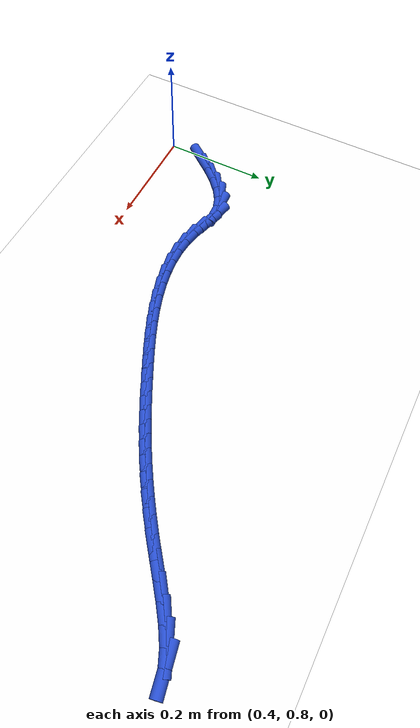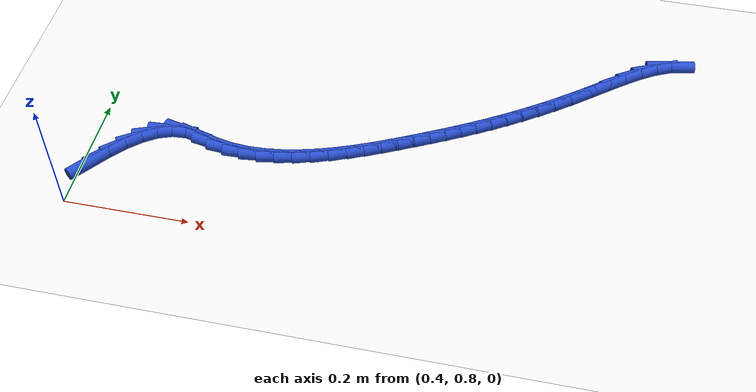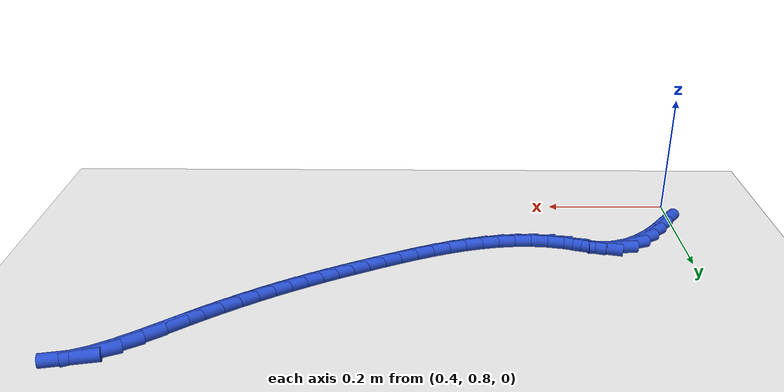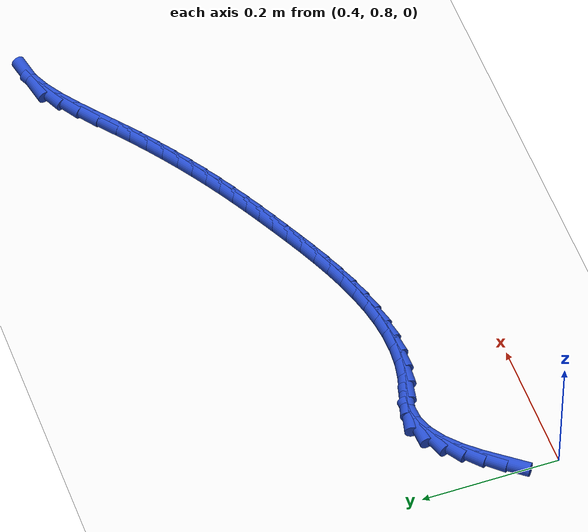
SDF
<sdf version="1.6">
 <world name="default">
  <model name="ground_plane">
   <static>1</static>
   <link name="link">
    <collision name="collision">
     <geometry><plane><normal>0 0 1</normal><size>100 100</size></plane></geometry>
     <surface><friction><ode><mu>100</mu><mu2>50</mu2></ode></friction></surface>
    </collision>
    <visual name="visual">
     <cast_shadows>0</cast_shadows>
     <geometry><plane><normal>0 0 1</normal><size>100 100</size></plane></geometry>
     <material>
      <script><uri>file://media/materials/scripts/gazebo.material</uri><name>Gazebo/WhiteGlow</name></script>
     </material>
    </visual>
   </link>
  </model>
  <model name="line">
   <link name="link_36">
    <pose>0.41557715671589757 0.8766518888122864 0.01 0 1.57 0.9097168254434055</pose>
    <collision name="collision">
     <geometry><cylinder><radius>0.01</radius><length>0.08</length></cylinder></geometry>
    </collision>
    <visual name="visual">
     <material>
      <script><name>Gazebo/Blue</name><uri>file://media/materials/scripts/gazebo.material</uri></script>
     </material>
     <geometry><cylinder><radius>0.01</radius><length>0.08</length></cylinder></geometry>
    </visual>
   </link>
   <link name="link_37">
    <pose>0.43493534386232124 0.9015391206780022 0.01 0 1.57 0.8382022605168087</pose>
    <collision name="collision">
     <geometry><cylinder><radius>0.01</radius><length>0.08</length></cylinder></geometry>
    </collision>
    <visual name="visual">
     <material>
      <script><name>Gazebo/Blue</name><uri>file://media/materials/scripts/gazebo.material</uri></script>
     </material>
     <geometry><cylinder><radius>0.01</radius><length>0.08</length></cylinder></geometry>
    </visual>
   </link>
   <link name="link_38">
    <pose>0.45508494013292605 0.9239375156891247 0.01 0 1.57 0.7292741217284323</pose>
    <collision name="collision">
     <geometry><cylinder><radius>0.01</radius><length>0.08</length></cylinder></geometry>
    </collision>
    <visual name="visual">
     <material>
      <script><name>Gazebo/Blue</name><uri>file://media/materials/scripts/gazebo.material</uri></script>
     </material>
     <geometry><cylinder><radius>0.01</radius><length>0.08</length></cylinder></geometry>
    </visual>
   </link>
   <link name="link_39">
    <pose>0.47612339207552895 0.9427377111314772 0.01 0 1.57 0.5692098055685585</pose>
    <collision name="collision">
     <geometry><cylinder><radius>0.01</radius><length>0.08</length></cylinder></geometry>
    </collision>
    <visual name="visual">
     <material>
      <script><name>Gazebo/Blue</name><uri>file://media/materials/scripts/gazebo.material</uri></script>
     </material>
     <geometry><cylinder><radius>0.01</radius><length>0.08</length></cylinder></geometry>
    </visual>
   </link>
   <link name="link_40">
    <pose>0.49814814623794745 0.9568303442908832 0.01 0 1.57 0.34389377227890133</pose>
    <collision name="collision">
     <geometry><cylinder><radius>0.01</radius><length>0.08</length></cylinder></geometry>
    </collision>
    <visual name="visual">
     <material>
      <script><name>Gazebo/Blue</name><uri>file://media/materials/scripts/gazebo.material</uri></script>
     </material>
     <geometry><cylinder><radius>0.01</radius><length>0.08</length></cylinder></geometry>
    </visual>
   </link>
   <link name="link_41">
    <pose>0.5212566491679989 0.9651060524531663 0.01 0 1.57 0.05549820853235824</pose>
    <collision name="collision">
     <geometry><cylinder><radius>0.01</radius><length>0.08</length></cylinder></geometry>
    </collision>
    <visual name="visual">
     <material>
      <script><name>Gazebo/Blue</name><uri>file://media/materials/scripts/gazebo.material</uri></script>
     </material>
     <geometry><cylinder><radius>0.01</radius><length>0.08</length></cylinder></geometry>
    </visual>
   </link>
   <link name="link_42">
    <pose>0.5455463474135003 0.96645547290415 0.01 0 1.57 -0.2350668429261476</pose>
    <collision name="collision">
     <geometry><cylinder><radius>0.01</radius><length>0.08</length></cylinder></geometry>
    </collision>
    <visual name="visual">
     <material>
      <script><name>Gazebo/Blue</name><uri>file://media/materials/scripts/gazebo.material</uri></script>
     </material>
     <geometry><cylinder><radius>0.01</radius><length>0.08</length></cylinder></geometry>
    </visual>
   </link>
   <link name="link_43">
    <pose>0.5710711136635586 0.9603424348504531 0.01 0 1.57 -0.30181040248448376</pose>
    <collision name="collision">
     <geometry><cylinder><radius>0.01</radius><length>0.08</length></cylinder></geometry>
    </collision>
    <visual name="visual">
     <material>
      <script><name>Gazebo/Blue</name><uri>file://media/materials/scripts/gazebo.material</uri></script>
     </material>
     <geometry><cylinder><radius>0.01</radius><length>0.08</length></cylinder></geometry>
    </visual>
   </link>
   <link name="link_44">
    <pose>0.5974346698493049 0.9521349061430052 0.01 0 1.57 -0.19079171505916978</pose>
    <collision name="collision">
     <geometry><cylinder><radius>0.01</radius><length>0.08</length></cylinder></geometry>
    </collision>
    <visual name="visual">
     <material>
      <script><name>Gazebo/Blue</name><uri>file://media/materials/scripts/gazebo.material</uri></script>
     </material>
     <geometry><cylinder><radius>0.01</radius><length>0.08</length></cylinder></geometry>
    </visual>
   </link>
   <link name="link_45">
    <pose>0.6242030603973368 0.9469648334704381 0.01 0 1.57 -0.07663513551249</pose>
    <collision name="collision">
     <geometry><cylinder><radius>0.01</radius><length>0.08</length></cylinder></geometry>
    </collision>
    <visual name="visual">
     <material>
      <script><name>Gazebo/Blue</name><uri>file://media/materials/scripts/gazebo.material</uri></script>
     </material>
     <geometry><cylinder><radius>0.01</radius><length>0.08</length></cylinder></geometry>
    </visual>
   </link>
   <link name="link_46">
    <pose>0.6512533928669875 0.9448877598039425 0.01 0 1.57 0.026088019033160104</pose>
    <collision name="collision">
     <geometry><cylinder><radius>0.01</radius><length>0.08</length></cylinder></geometry>
    </collision>
    <visual name="visual">
     <material>
      <script><name>Gazebo/Blue</name><uri>file://media/materials/scripts/gazebo.material</uri></script>
     </material>
     <geometry><cylinder><radius>0.01</radius><length>0.08</length></cylinder></geometry>
    </visual>
   </link>
   <link name="link_47">
    <pose>0.6784849381984444 0.9455983380870778 0.01 0 1.57 0.11637568455757877</pose>
    <collision name="collision">
     <geometry><cylinder><radius>0.01</radius><length>0.08</length></cylinder></geometry>
    </collision>
    <visual name="visual">
     <material>
      <script><name>Gazebo/Blue</name><uri>file://media/materials/scripts/gazebo.material</uri></script>
     </material>
     <geometry><cylinder><radius>0.01</radius><length>0.08</length></cylinder></geometry>
    </visual>
   </link>
   <link name="link_48">
    <pose>0.7057969673318943 0.9487912212634037 0.01 0 1.57 0.1942750547246561</pose>
    <collision name="collision">
     <geometry><cylinder><radius>0.01</radius><length>0.08</length></cylinder></geometry>
    </collision>
    <visual name="visual">
     <material>
      <script><name>Gazebo/Blue</name><uri>file://media/materials/scripts/gazebo.material</uri></script>
     </material>
     <geometry><cylinder><radius>0.01</radius><length>0.08</length></cylinder></geometry>
    </visual>
   </link>
   <link name="link_49">
    <pose>0.7330887512075247 0.9541610622764796 0.01 0 1.57 0.2604615958813891</pose>
    <collision name="collision">
     <geometry><cylinder><radius>0.01</radius><length>0.08</length></cylinder></geometry>
    </collision>
    <visual name="visual">
     <material>
      <script><name>Gazebo/Blue</name><uri>file://media/materials/scripts/gazebo.material</uri></script>
     </material>
     <geometry><cylinder><radius>0.01</radius><length>0.08</length></cylinder></geometry>
    </visual>
   </link>
   <link name="link_50">
    <pose>0.7602595607655221 0.9614025140698645 0.01 0 1.57 0.31588413985902697</pose>
    <collision name="collision">
     <geometry><cylinder><radius>0.01</radius><length>0.08</length></cylinder></geometry>
    </collision>
    <visual name="visual">
     <material>
      <script><name>Gazebo/Blue</name><uri>file://media/materials/scripts/gazebo.material</uri></script>
     </material>
     <geometry><cylinder><radius>0.01</radius><length>0.08</length></cylinder></geometry>
    </visual>
   </link>
   <link name="link_51">
    <pose>0.7872086669460738 0.9702102295871187 0.01 0 1.57 0.3615214166022605</pose>
    <collision name="collision">
     <geometry><cylinder><radius>0.01</radius><length>0.08</length></cylinder></geometry>
    </collision>
    <visual name="visual">
     <material>
      <script><name>Gazebo/Blue</name><uri>file://media/materials/scripts/gazebo.material</uri></script>
     </material>
     <geometry><cylinder><radius>0.01</radius><length>0.08</length></cylinder></geometry>
    </visual>
   </link>
   <link name="link_52">
    <pose>0.8138353406893672 0.9802788617718015 0.01 0 1.57 0.398235335562047</pose>
    <collision name="collision">
     <geometry><cylinder><radius>0.01</radius><length>0.08</length></cylinder></geometry>
    </collision>
    <visual name="visual">
     <material>
      <script><name>Gazebo/Blue</name><uri>file://media/materials/scripts/gazebo.material</uri></script>
     </material>
     <geometry><cylinder><radius>0.01</radius><length>0.08</length></cylinder></geometry>
    </visual>
   </link>
   <link name="link_53">
    <pose>0.8400388529355893 0.9913030635674722 0.01 0 1.57 0.4266878115329776</pose>
    <collision name="collision">
     <geometry><cylinder><radius>0.01</radius><length>0.08</length></cylinder></geometry>
    </collision>
    <visual name="visual">
     <material>
      <script><name>Gazebo/Blue</name><uri>file://media/materials/scripts/gazebo.material</uri></script>
     </material>
     <geometry><cylinder><radius>0.01</radius><length>0.08</length></cylinder></geometry>
    </visual>
   </link>
   <link name="link_54">
    <pose>0.8657184746249265 1.0029774879176905 0.01 0 1.57 0.4472895999580837</pose>
    <collision name="collision">
     <geometry><cylinder><radius>0.01</radius><length>0.08</length></cylinder></geometry>
    </collision>
    <visual name="visual">
     <material>
      <script><name>Gazebo/Blue</name><uri>file://media/materials/scripts/gazebo.material</uri></script>
     </material>
     <geometry><cylinder><radius>0.01</radius><length>0.08</length></cylinder></geometry>
    </visual>
   </link>
   <link name="link_55">
    <pose>0.8907734766975667 1.0149967877660158 0.01 0 1.57 0.46021744132438674</pose>
    <collision name="collision">
     <geometry><cylinder><radius>0.01</radius><length>0.08</length></cylinder></geometry>
    </collision>
    <visual name="visual">
     <material>
      <script><name>Gazebo/Blue</name><uri>file://media/materials/scripts/gazebo.material</uri></script>
     </material>
     <geometry><cylinder><radius>0.01</radius><length>0.08</length></cylinder></geometry>
    </visual>
   </link>
   <link name="link_56">
    <pose>0.9151045815455 1.027058193689771 0.01 0 1.57 0.4692396125667356</pose>
    <collision name="collision">
     <geometry><cylinder><radius>0.01</radius><length>0.08</length></cylinder></geometry>
    </collision>
    <visual name="visual">
     <material>
      <script><name>Gazebo/Blue</name><uri>file://media/materials/scripts/gazebo.material</uri></script>
     </material>
     <geometry><cylinder><radius>0.01</radius><length>0.08</length></cylinder></geometry>
    </visual>
   </link>
   <link name="link_57">
    <pose>0.9387055104458468 1.0390240930187873 0.01 0 1.57 0.48050025321752987</pose>
    <collision name="collision">
     <geometry><cylinder><radius>0.01</radius><length>0.08</length></cylinder></geometry>
    </collision>
    <visual name="visual">
     <material>
      <script><name>Gazebo/Blue</name><uri>file://media/materials/scripts/gazebo.material</uri></script>
     </material>
     <geometry><cylinder><radius>0.01</radius><length>0.08</length></cylinder></geometry>
    </visual>
   </link>
   <link name="link_58">
    <pose>0.9617176390641111 1.0510190925626777 0.01 0 1.57 0.4944465477223395</pose>
    <collision name="collision">
     <geometry><cylinder><radius>0.01</radius><length>0.08</length></cylinder></geometry>
    </collision>
    <visual name="visual">
     <material>
      <script><name>Gazebo/Blue</name><uri>file://media/materials/scripts/gazebo.material</uri></script>
     </material>
     <geometry><cylinder><radius>0.01</radius><length>0.08</length></cylinder></geometry>
    </visual>
   </link>
   <link name="link_59">
    <pose>0.9842954633300945 1.0631910994129934 0.01 0 1.57 0.5108307671526923</pose>
    <collision name="collision">
     <geometry><cylinder><radius>0.01</radius><length>0.08</length></cylinder></geometry>
    </collision>
    <visual name="visual">
     <material>
      <script><name>Gazebo/Blue</name><uri>file://media/materials/scripts/gazebo.material</uri></script>
     </material>
     <geometry><cylinder><radius>0.01</radius><length>0.08</length></cylinder></geometry>
    </visual>
   </link>
   <link name="link_60">
    <pose>1.0065934791735986 1.075688020661285 0.01 0 1.57 0.5292737658786579</pose>
    <collision name="collision">
     <geometry><cylinder><radius>0.01</radius><length>0.08</length></cylinder></geometry>
    </collision>
    <visual name="visual">
     <material>
      <script><name>Gazebo/Blue</name><uri>file://media/materials/scripts/gazebo.material</uri></script>
     </material>
     <geometry><cylinder><radius>0.01</radius><length>0.08</length></cylinder></geometry>
    </visual>
   </link>
   <link name="link_61">
    <pose>1.028766182524426 1.0886577633991046 0.01 0 1.57 0.5492919035547316</pose>
    <collision name="collision">
     <geometry><cylinder><radius>0.01</radius><length>0.08</length></cylinder></geometry>
    </collision>
    <visual name="visual">
     <material>
      <script><name>Gazebo/Blue</name><uri>file://media/materials/scripts/gazebo.material</uri></script>
     </material>
     <geometry><cylinder><radius>0.01</radius><length>0.08</length></cylinder></geometry>
    </visual>
   </link>
   <link name="link_62">
    <pose>1.0509680693123775 1.1022482347180025 0.01 0 1.57 0.5703375533128149</pose>
    <collision name="collision">
     <geometry><cylinder><radius>0.01</radius><length>0.08</length></cylinder></geometry>
    </collision>
    <visual name="visual">
     <material>
      <script><name>Gazebo/Blue</name><uri>file://media/materials/scripts/gazebo.material</uri></script>
     </material>
     <geometry><cylinder><radius>0.01</radius><length>0.08</length></cylinder></geometry>
    </visual>
   </link>
   <link name="link_63">
    <pose>1.0733536354672548 1.1166073417095295 0.01 0 1.57 0.5918463514609686</pose>
    <collision name="collision">
     <geometry><cylinder><radius>0.01</radius><length>0.08</length></cylinder></geometry>
    </collision>
    <visual name="visual">
     <material>
      <script><name>Gazebo/Blue</name><uri>file://media/materials/scripts/gazebo.material</uri></script>
     </material>
     <geometry><cylinder><radius>0.01</radius><length>0.08</length></cylinder></geometry>
    </visual>
   </link>
   <link name="link_64">
    <pose>1.0960773769188605 1.131882991465238 0.01 0 1.57 0.6132829364597052</pose>
    <collision name="collision">
     <geometry><cylinder><radius>0.01</radius><length>0.08</length></cylinder></geometry>
    </collision>
    <visual name="visual">
     <material>
      <script><name>Gazebo/Blue</name><uri>file://media/materials/scripts/gazebo.material</uri></script>
     </material>
     <geometry><cylinder><radius>0.01</radius><length>0.08</length></cylinder></geometry>
    </visual>
   </link>
   <link name="link_65">
    <pose>1.1192937895969954 1.148223091076678 0.01 0 1.57 0.6341779198744755</pose>
    <collision name="collision">
     <geometry><cylinder><radius>0.01</radius><length>0.08</length></cylinder></geometry>
    </collision>
    <visual name="visual">
     <material>
      <script><name>Gazebo/Blue</name><uri>file://media/materials/scripts/gazebo.material</uri></script>
     </material>
     <geometry><cylinder><radius>0.01</radius><length>0.08</length></cylinder></geometry>
    </visual>
   </link>
   <link name="link_66">
    <pose>1.1431573694314616 1.165775547635401 0.01 0 1.57 0.6541516896999916</pose>
    <collision name="collision">
     <geometry><cylinder><radius>0.01</radius><length>0.08</length></cylinder></geometry>
    </collision>
    <visual name="visual">
     <material>
      <script><name>Gazebo/Blue</name><uri>file://media/materials/scripts/gazebo.material</uri></script>
     </material>
     <geometry><cylinder><radius>0.01</radius><length>0.08</length></cylinder></geometry>
    </visual>
   </link>
   <link name="link_67">
    <pose>1.1678226123520612 1.184688268232958 0.01 0 1.57 0.6699337207095273</pose>
    <collision name="collision">
     <geometry><cylinder><radius>0.01</radius><length>0.08</length></cylinder></geometry>
    </collision>
    <visual name="visual">
     <material>
      <script><name>Gazebo/Blue</name><uri>file://media/materials/scripts/gazebo.material</uri></script>
     </material>
     <geometry><cylinder><radius>0.01</radius><length>0.08</length></cylinder></geometry>
    </visual>
   </link>
   <link name="link_68">
    <pose>1.193374565082674 1.2049291530411803 0.01 0 1.57 0.6634497295644504</pose>
    <collision name="collision">
     <geometry><cylinder><radius>0.01</radius><length>0.08</length></cylinder></geometry>
    </collision>
    <visual name="visual">
     <material>
      <script><name>Gazebo/Blue</name><uri>file://media/materials/scripts/gazebo.material</uri></script>
     </material>
     <geometry><cylinder><radius>0.01</radius><length>0.08</length></cylinder></geometry>
    </visual>
   </link>
   <link name="link_69">
    <pose>1.2194537226837256 1.2253138590271848 0.01 0 1.57 0.6270090021061866</pose>
    <collision name="collision">
     <geometry><cylinder><radius>0.01</radius><length>0.08</length></cylinder></geometry>
    </collision>
    <visual name="visual">
     <material>
      <script><name>Gazebo/Blue</name><uri>file://media/materials/scripts/gazebo.material</uri></script>
     </material>
     <geometry><cylinder><radius>0.01</radius><length>0.08</length></cylinder></geometry>
    </visual>
   </link>
   <link name="link_70">
    <pose>1.2455253665182062 1.2442039029335945 0.01 0 1.57 0.5529510030765529</pose>
    <collision name="collision">
     <geometry><cylinder><radius>0.01</radius><length>0.08</length></cylinder></geometry>
    </collision>
    <visual name="visual">
     <material>
      <script><name>Gazebo/Blue</name><uri>file://media/materials/scripts/gazebo.material</uri></script>
     </material>
     <geometry><cylinder><radius>0.01</radius><length>0.08</length></cylinder></geometry>
    </visual>
   </link>
   <link name="link_71">
    <pose>1.2710543532852132 1.2599597008073755 0.01 0 1.57 0.42213722705176165</pose>
    <collision name="collision">
     <geometry><cylinder><radius>0.01</radius><length>0.08</length></cylinder></geometry>
    </collision>
    <visual name="visual">
     <material>
      <script><name>Gazebo/Blue</name><uri>file://media/materials/scripts/gazebo.material</uri></script>
     </material>
     <geometry><cylinder><radius>0.01</radius><length>0.08</length></cylinder></geometry>
    </visual>
   </link>
   <link name="link_72">
    <pose>1.2955055396838442 1.2709416686954942 0.01 0 1.57 0.1974336789692078</pose>
    <collision name="collision">
     <geometry><cylinder><radius>0.01</radius><length>0.08</length></cylinder></geometry>
    </collision>
    <visual name="visual">
     <material>
      <script><name>Gazebo/Blue</name><uri>file://media/materials/scripts/gazebo.material</uri></script>
     </material>
     <geometry><cylinder><radius>0.01</radius><length>0.08</length></cylinder></geometry>
    </visual>
   </link>
  </model>
 </world>
</sdf>
